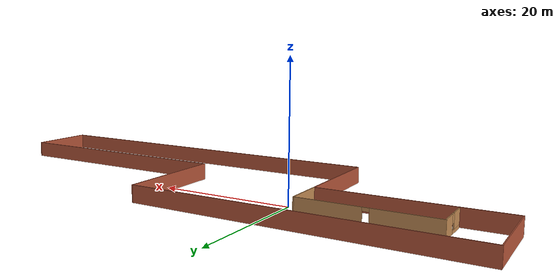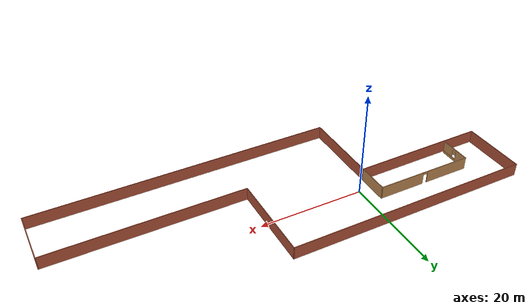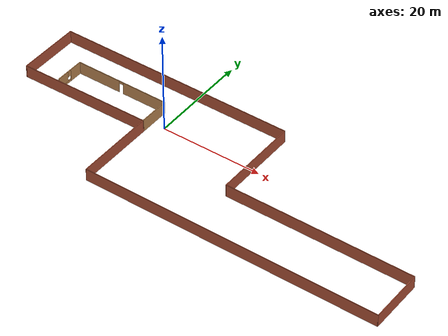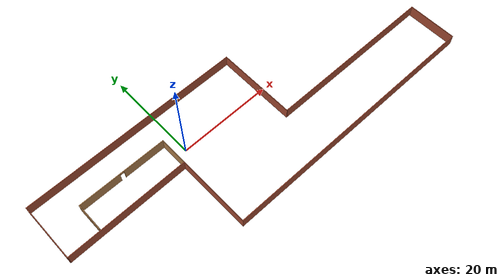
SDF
<?xml version='1.0'?>
<sdf version='1.6'>
  <model name='floor_plan'>
    <pose frame=''>13.6946 -4.48 0 0 -0 0</pose>
    <link name='Wall_0'>
      <collision name='Wall_0_Collision'>
        <geometry>
          <box>
            <size>15.75 0.15 2.5</size>
          </box>
        </geometry>
        <pose frame=''>0 0 1.25 0 -0 0</pose>
      </collision>
      <visual name='Wall_0_Visual'>
        <pose frame=''>0 0 1.25 0 -0 0</pose>
        <geometry>
          <box>
            <size>15.75 0.15 2.5</size>
          </box>
        </geometry>
        <material>
          <script>
            <uri>file://media/materials/scripts/gazebo.material</uri>
            <name>Gazebo/Bricks</name>
          </script>
          <ambient>1 1 1 1</ambient>
        </material>
        <meta>
          <layer>0</layer>
        </meta>
      </visual>
      <pose frame=''>-16.1246 -6.05 0 0 0 -1.5708</pose>
    </link>
    <link name='Wall_1'>
      <collision name='Wall_1_Collision'>
        <geometry>
          <box>
            <size>58.25 0.15 2.5</size>
          </box>
        </geometry>
        <pose frame=''>0 0 1.25 0 -0 0</pose>
      </collision>
      <visual name='Wall_1_Visual'>
        <pose frame=''>0 0 1.25 0 -0 0</pose>
        <geometry>
          <box>
            <size>58.25 0.15 2.5</size>
          </box>
        </geometry>
        <material>
          <script>
            <uri>file://media/materials/scripts/gazebo.material</uri>
            <name>Gazebo/Bricks</name>
          </script>
          <ambient>1 1 1 1</ambient>
        </material>
        <meta>
          <layer>0</layer>
        </meta>
      </visual>
      <pose frame=''>12.9254 -13.85 0 0 -0 0</pose>
    </link>
    <link name='Wall_10'>
      <pose frame=''>-34.9746 4.925 0 0 0 -1.5708</pose>
      <visual name='Wall_10_Visual_0'>
        <pose frame=''>-1.63685 0 1.25 0 -0 0</pose>
        <geometry>
          <box>
            <size>2.7263 0.15 2.5</size>
          </box>
        </geometry>
        <material>
          <script>
            <uri>file://media/materials/scripts/gazebo.material</uri>
            <name>Gazebo/Wood</name>
          </script>
          <ambient>1 1 1 1</ambient>
        </material>
        <meta>
          <layer>0</layer>
        </meta>
      </visual>
      <collision name='Wall_10_Collision_0'>
        <geometry>
          <box>
            <size>2.7263 0.15 2.5</size>
          </box>
        </geometry>
        <pose frame=''>-1.63685 0 1.25 0 -0 0</pose>
      </collision>
      <visual name='Wall_10_Visual_1'>
        <pose frame=''>1.36315 0 0.25 0 -0 0</pose>
        <geometry>
          <box>
            <size>3.2737 0.15 0.5</size>
          </box>
        </geometry>
        <material>
          <script>
            <uri>file://media/materials/scripts/gazebo.material</uri>
            <name>Gazebo/Wood</name>
          </script>
          <ambient>1 1 1 1</ambient>
        </material>
        <meta>
          <layer>0</layer>
        </meta>
      </visual>
      <collision name='Wall_10_Collision_1'>
        <geometry>
          <box>
            <size>3.2737 0.15 0.5</size>
          </box>
        </geometry>
        <pose frame=''>1.36315 0 0.25 0 -0 0</pose>
      </collision>
      <visual name='Wall_10_Visual_2'>
        <pose frame=''>1.76315 0 1.5 0 -0 0</pose>
        <geometry>
          <box>
            <size>2.4737 0.15 2</size>
          </box>
        </geometry>
        <material>
          <script>
            <uri>file://media/materials/scripts/gazebo.material</uri>
            <name>Gazebo/Wood</name>
          </script>
          <ambient>1 1 1 1</ambient>
        </material>
        <meta>
          <layer>0</layer>
        </meta>
      </visual>
      <collision name='Wall_10_Collision_2'>
        <geometry>
          <box>
            <size>2.4737 0.15 2</size>
          </box>
        </geometry>
        <pose frame=''>1.76315 0 1.5 0 -0 0</pose>
      </collision>
      <visual name='Wall_10_Visual_3'>
        <pose frame=''>0.1263 0 1.9 0 -0 0</pose>
        <geometry>
          <box>
            <size>0.8 0.15 1.2</size>
          </box>
        </geometry>
        <material>
          <script>
            <uri>file://media/materials/scripts/gazebo.material</uri>
            <name>Gazebo/Wood</name>
          </script>
          <ambient>1 1 1 1</ambient>
        </material>
        <meta>
          <layer>0</layer>
        </meta>
      </visual>
      <collision name='Wall_10_Collision_3'>
        <geometry>
          <box>
            <size>0.8 0.15 1.2</size>
          </box>
        </geometry>
        <pose frame=''>0.1263 0 1.9 0 -0 0</pose>
      </collision>
    </link>
    <link name='Wall_2'>
      <collision name='Wall_2_Collision'>
        <geometry>
          <box>
            <size>10.75 0.15 2.5</size>
          </box>
        </geometry>
        <pose frame=''>0 0 1.25 0 -0 0</pose>
      </collision>
      <visual name='Wall_2_Visual'>
        <pose frame=''>0 0 1.25 0 -0 0</pose>
        <geometry>
          <box>
            <size>10.75 0.15 2.5</size>
          </box>
        </geometry>
        <material>
          <script>
            <uri>file://media/materials/scripts/gazebo.material</uri>
            <name>Gazebo/Bricks</name>
          </script>
          <ambient>1 1 1 1</ambient>
        </material>
        <meta>
          <layer>0</layer>
        </meta>
      </visual>
      <pose frame=''>41.9754 -8.55 0 0 -0 1.5708</pose>
    </link>
    <link name='Wall_3'>
      <collision name='Wall_3_Collision'>
        <geometry>
          <box>
            <size>37 0.15 2.5</size>
          </box>
        </geometry>
        <pose frame=''>0 0 1.25 0 -0 0</pose>
      </collision>
      <visual name='Wall_3_Visual'>
        <pose frame=''>0 0 1.25 0 -0 0</pose>
        <geometry>
          <box>
            <size>37 0.15 2.5</size>
          </box>
        </geometry>
        <material>
          <script>
            <uri>file://media/materials/scripts/gazebo.material</uri>
            <name>Gazebo/Bricks</name>
          </script>
          <ambient>1 1 1 1</ambient>
        </material>
        <meta>
          <layer>0</layer>
        </meta>
      </visual>
      <pose frame=''>23.5504 -3.25 0 0 -0 3.14159</pose>
    </link>
    <link name='Wall_4'>
      <collision name='Wall_4_Collision'>
        <geometry>
          <box>
            <size>17.25 0.15 2.5</size>
          </box>
        </geometry>
        <pose frame=''>0 0 1.25 0 -0 0</pose>
      </collision>
      <visual name='Wall_4_Visual'>
        <pose frame=''>0 0 1.25 0 -0 0</pose>
        <geometry>
          <box>
            <size>17.25 0.15 2.5</size>
          </box>
        </geometry>
        <material>
          <script>
            <uri>file://media/materials/scripts/gazebo.material</uri>
            <name>Gazebo/Bricks</name>
          </script>
          <ambient>1 1 1 1</ambient>
        </material>
        <meta>
          <layer>0</layer>
        </meta>
      </visual>
      <pose frame=''>5.12536 5.3 0 0 -0 1.5708</pose>
    </link>
    <link name='Wall_5'>
      <collision name='Wall_5_Collision'>
        <geometry>
          <box>
            <size>47.25 0.15 2.5</size>
          </box>
        </geometry>
        <pose frame=''>0 0 1.25 0 -0 0</pose>
      </collision>
      <visual name='Wall_5_Visual'>
        <pose frame=''>0 0 1.25 0 -0 0</pose>
        <geometry>
          <box>
            <size>47.25 0.15 2.5</size>
          </box>
        </geometry>
        <material>
          <script>
            <uri>file://media/materials/scripts/gazebo.material</uri>
            <name>Gazebo/Bricks</name>
          </script>
          <ambient>1 1 1 1</ambient>
        </material>
        <meta>
          <layer>0</layer>
        </meta>
      </visual>
      <pose frame=''>-18.4246 13.85 0 0 -0 3.14159</pose>
    </link>
    <link name='Wall_6'>
      <collision name='Wall_6_Collision'>
        <geometry>
          <box>
            <size>12.5 0.15 2.5</size>
          </box>
        </geometry>
        <pose frame=''>0 0 1.25 0 -0 0</pose>
      </collision>
      <visual name='Wall_6_Visual'>
        <pose frame=''>0 0 1.25 0 -0 0</pose>
        <geometry>
          <box>
            <size>12.5 0.15 2.5</size>
          </box>
        </geometry>
        <material>
          <script>
            <uri>file://media/materials/scripts/gazebo.material</uri>
            <name>Gazebo/Bricks</name>
          </script>
          <ambient>1 1 1 1</ambient>
        </material>
        <meta>
          <layer>0</layer>
        </meta>
      </visual>
      <pose frame=''>-41.9746 7.675 0 0 0 -1.5708</pose>
    </link>
    <link name='Wall_7'>
      <collision name='Wall_7_Collision'>
        <geometry>
          <box>
            <size>26.0012 0.15 2.5</size>
          </box>
        </geometry>
        <pose frame=''>0 0 1.25 0 -0 0</pose>
      </collision>
      <visual name='Wall_7_Visual'>
        <pose frame=''>0 0 1.25 0 -0 0</pose>
        <geometry>
          <box>
            <size>26.0012 0.15 2.5</size>
          </box>
        </geometry>
        <material>
          <script>
            <uri>file://media/materials/scripts/gazebo.material</uri>
            <name>Gazebo/Bricks</name>
          </script>
          <ambient>1 1 1 1</ambient>
        </material>
        <meta>
          <layer>0</layer>
        </meta>
      </visual>
      <pose frame=''>-29.0496 1.625 0 0 -0 0.009671</pose>
    </link>
    <link name='Wall_8'>
      <collision name='Wall_8_Collision'>
        <geometry>
          <box>
            <size>6.25 0.15 2.5</size>
          </box>
        </geometry>
        <pose frame=''>0 0 1.25 0 -0 0</pose>
      </collision>
      <visual name='Wall_8_Visual'>
        <pose frame=''>0 0 1.25 0 -0 0</pose>
        <geometry>
          <box>
            <size>6.25 0.15 2.5</size>
          </box>
        </geometry>
        <material>
          <script>
            <uri>file://media/materials/scripts/gazebo.material</uri>
            <name>Gazebo/Wood</name>
          </script>
          <ambient>1 1 1 1</ambient>
        </material>
        <meta>
          <layer>0</layer>
        </meta>
      </visual>
      <pose frame=''>-16.1246 4.8 0 0 -0 1.5708</pose>
    </link>
    <link name='Wall_9'>
      <pose frame=''>-25.5496 7.85 0 0 -0 3.14159</pose>
      <visual name='Wall_9_Visual_0'>
        <pose frame=''>-4.91786 0 1.25 0 -0 0</pose>
        <geometry>
          <box>
            <size>9.16428 0.15 2.5</size>
          </box>
        </geometry>
        <material>
          <script>
            <uri>file://media/materials/scripts/gazebo.material</uri>
            <name>Gazebo/Wood</name>
          </script>
          <ambient>1 1 1 1</ambient>
        </material>
        <meta>
          <layer>0</layer>
        </meta>
      </visual>
      <collision name='Wall_9_Collision_0'>
        <geometry>
          <box>
            <size>9.16428 0.15 2.5</size>
          </box>
        </geometry>
        <pose frame=''>-4.91786 0 1.25 0 -0 0</pose>
      </collision>
      <visual name='Wall_9_Visual_1'>
        <pose frame=''>5.03214 0 1.25 0 -0 0</pose>
        <geometry>
          <box>
            <size>8.93572 0.15 2.5</size>
          </box>
        </geometry>
        <material>
          <script>
            <uri>file://media/materials/scripts/gazebo.material</uri>
            <name>Gazebo/Wood</name>
          </script>
          <ambient>1 1 1 1</ambient>
        </material>
        <meta>
          <layer>0</layer>
        </meta>
      </visual>
      <collision name='Wall_9_Collision_1'>
        <geometry>
          <box>
            <size>8.93572 0.15 2.5</size>
          </box>
        </geometry>
        <pose frame=''>5.03214 0 1.25 0 -0 0</pose>
      </collision>
      <visual name='Wall_9_Visual_2'>
        <pose frame=''>0.114281 0 2.25 0 -0 0</pose>
        <geometry>
          <box>
            <size>0.9 0.15 0.5</size>
          </box>
        </geometry>
        <material>
          <script>
            <uri>file://media/materials/scripts/gazebo.material</uri>
            <name>Gazebo/Wood</name>
          </script>
          <ambient>1 1 1 1</ambient>
        </material>
        <meta>
          <layer>0</layer>
        </meta>
      </visual>
      <collision name='Wall_9_Collision_2'>
        <geometry>
          <box>
            <size>0.9 0.15 0.5</size>
          </box>
        </geometry>
        <pose frame=''>0.114281 0 2.25 0 -0 0</pose>
      </collision>
    </link>
    <static>1</static>
  </model>
</sdf>
